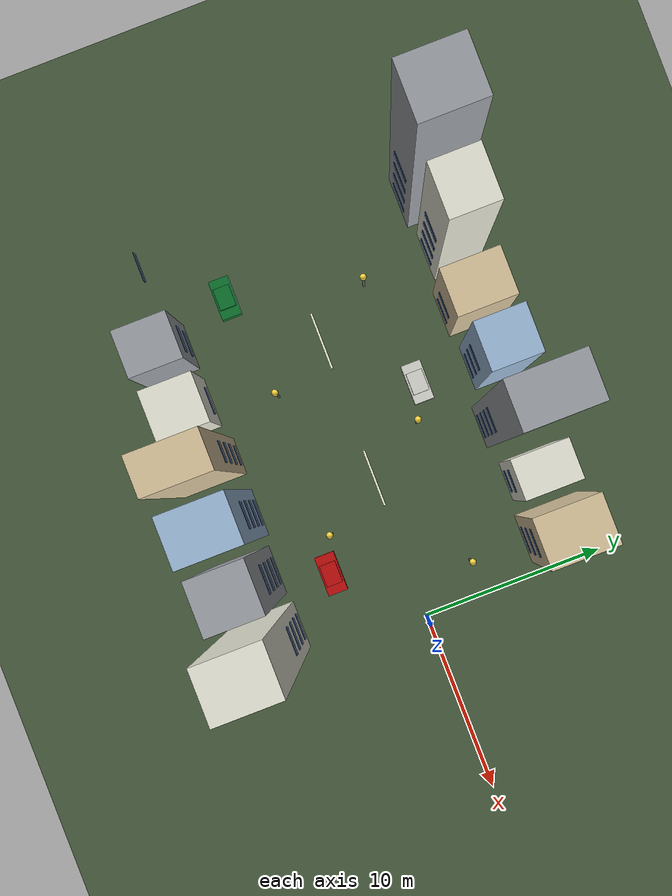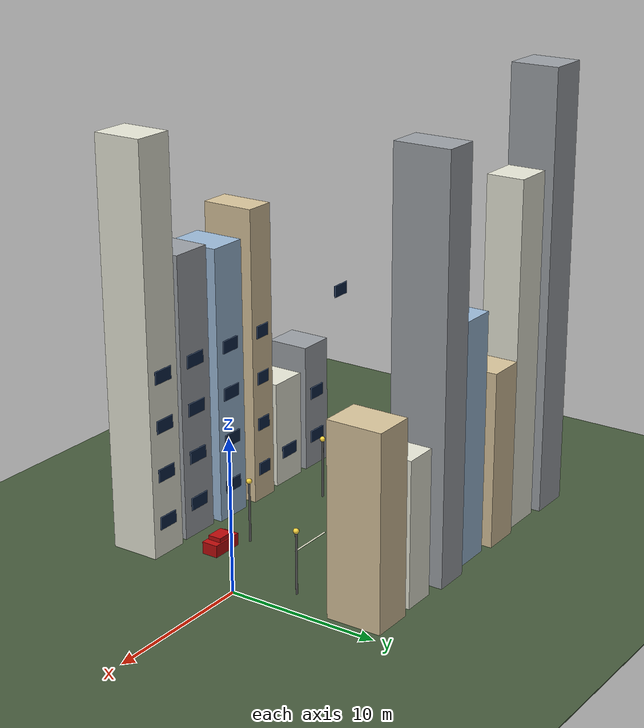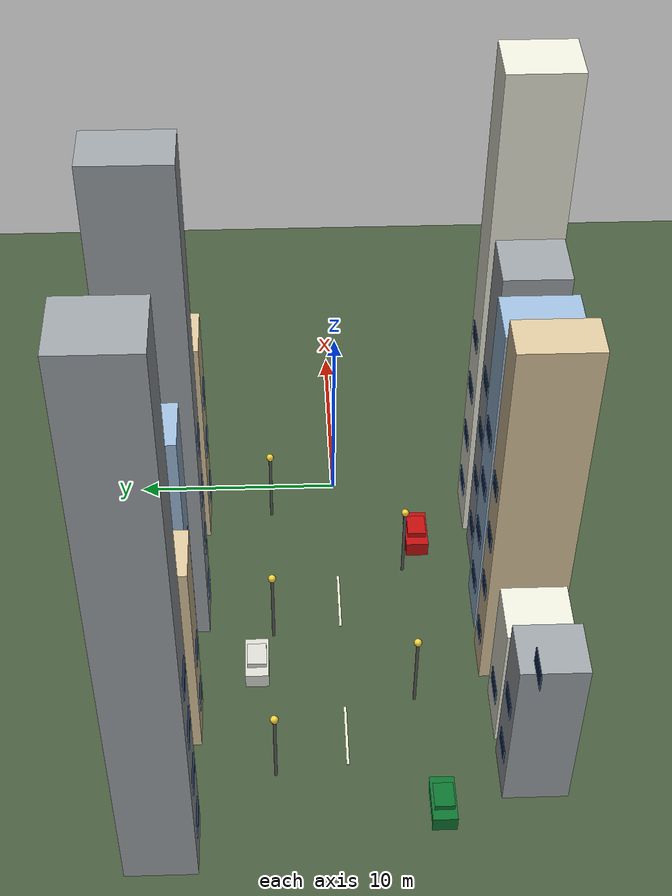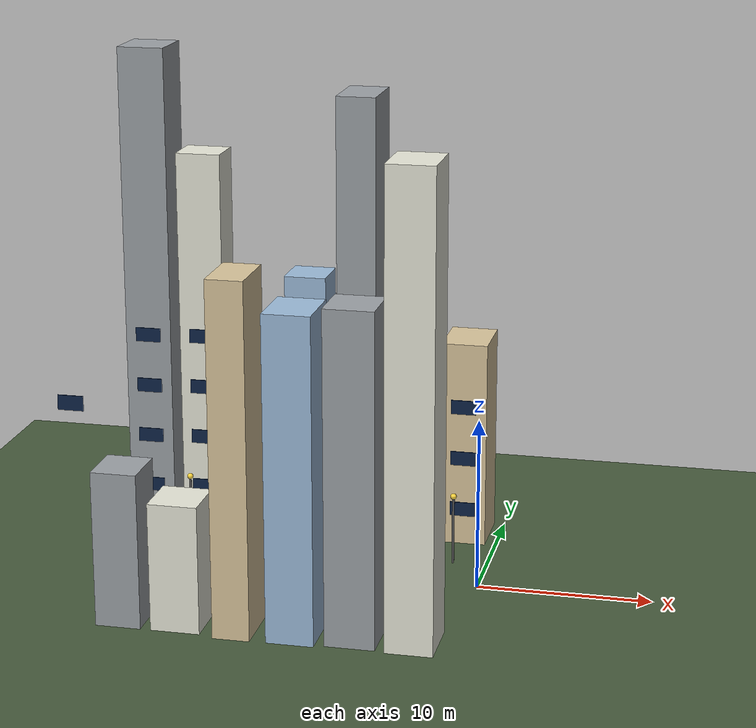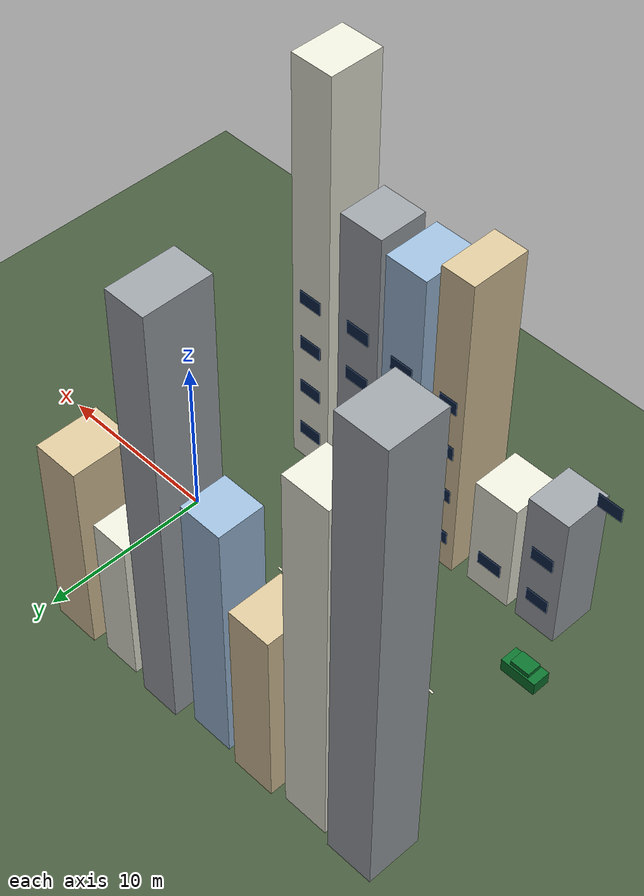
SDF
<sdf version="1.7">
 <world name="urban_street">
  <model name="green_ground">
   <static>true</static>
   <pose>0 0 -0.08 0 0 0.0</pose>
   <link name="link">
    <collision name="collision"><geometry><box><size>95 95 0.08</size></box></geometry></collision>
    <visual name="visual">
     <geometry><box><size>95 95 0.08</size></box></geometry>
     <material>
      <ambient>0.28 0.36 0.24 1</ambient>
      <diffuse>0.28 0.36 0.24 1</diffuse>
      <specular>0.1 0.1 0.1 1</specular>
     </material>
    </visual>
   </link>
  </model>
  <model name="white_lane_marking_03">
   <static>true</static>
   <pose>-16 0 0.055 0 0 0.0</pose>
   <link name="link">
    <collision name="collision"><geometry><box><size>3.2 0.12 0.02</size></box></geometry></collision>
    <visual name="visual">
     <geometry><box><size>3.2 0.12 0.02</size></box></geometry>
     <material>
      <ambient>0.95 0.95 0.85 1</ambient>
      <diffuse>0.95 0.95 0.85 1</diffuse>
      <specular>0.1 0.1 0.1 1</specular>
     </material>
    </visual>
   </link>
  </model>
  <model name="white_lane_marking_04">
   <static>true</static>
   <pose>-8 0 0.055 0 0 0.0</pose>
   <link name="link">
    <collision name="collision"><geometry><box><size>3.2 0.12 0.02</size></box></geometry></collision>
    <visual name="visual">
     <geometry><box><size>3.2 0.12 0.02</size></box></geometry>
     <material>
      <ambient>0.95 0.95 0.85 1</ambient>
      <diffuse>0.95 0.95 0.85 1</diffuse>
      <specular>0.1 0.1 0.1 1</specular>
     </material>
    </visual>
   </link>
  </model>
  <model name="building_facade_07_window_3">
   <static>true</static>
   <pose>-21.5 -6.92 11.8 0 0 0.0</pose>
   <link name="link">
    <collision name="collision"><geometry><box><size>1.46 0.05 0.85</size></box></geometry></collision>
    <visual name="visual">
     <geometry><box><size>1.46 0.05 0.85</size></box></geometry>
     <material>
      <ambient>0.05 0.14 0.28 1</ambient>
      <diffuse>0.05 0.14 0.28 1</diffuse>
      <specular>0.1 0.1 0.1 1</specular>
     </material>
    </visual>
   </link>
  </model>
  <model name="building_facade_08">
   <static>true</static>
   <pose>-18.25 -8.2 4.44 0 0 0.0</pose>
   <link name="link">
    <collision name="collision"><geometry><box><size>2.56 2.94 8.89</size></box></geometry></collision>
    <visual name="visual">
     <geometry><box><size>2.56 2.94 8.89</size></box></geometry>
     <material>
      <ambient>0.62 0.64 0.66 1</ambient>
      <diffuse>0.62 0.64 0.66 1</diffuse>
      <specular>0.1 0.1 0.1 1</specular>
     </material>
    </visual>
   </link>
  </model>
  <model name="building_facade_08_window_0">
   <static>true</static>
   <pose>-18.25 -6.7 2.2 0 0 0.0</pose>
   <link name="link">
    <collision name="collision"><geometry><box><size>1.41 0.05 0.85</size></box></geometry></collision>
    <visual name="visual">
     <geometry><box><size>1.41 0.05 0.85</size></box></geometry>
     <material>
      <ambient>0.05 0.14 0.28 1</ambient>
      <diffuse>0.05 0.14 0.28 1</diffuse>
      <specular>0.1 0.1 0.1 1</specular>
     </material>
    </visual>
   </link>
  </model>
  <model name="building_facade_08_window_1">
   <static>true</static>
   <pose>-18.25 -6.7 5.4 0 0 0.0</pose>
   <link name="link">
    <collision name="collision"><geometry><box><size>1.41 0.05 0.85</size></box></geometry></collision>
    <visual name="visual">
     <geometry><box><size>1.41 0.05 0.85</size></box></geometry>
     <material>
      <ambient>0.05 0.14 0.28 1</ambient>
      <diffuse>0.05 0.14 0.28 1</diffuse>
      <specular>0.1 0.1 0.1 1</specular>
     </material>
    </visual>
   </link>
  </model>
  <model name="building_facade_09">
   <static>true</static>
   <pose>-15.0 -8.2 3.66 0 0 0.0</pose>
   <link name="link">
    <collision name="collision"><geometry><box><size>2.77 2.94 7.32</size></box></geometry></collision>
    <visual name="visual">
     <geometry><box><size>2.77 2.94 7.32</size></box></geometry>
     <material>
      <ambient>0.92 0.92 0.86 1</ambient>
      <diffuse>0.92 0.92 0.86 1</diffuse>
      <specular>0.1 0.1 0.1 1</specular>
     </material>
    </visual>
   </link>
  </model>
  <model name="building_facade_09_window_0">
   <static>true</static>
   <pose>-15.0 -6.7 2.2 0 0 0.0</pose>
   <link name="link">
    <collision name="collision"><geometry><box><size>1.52 0.05 0.85</size></box></geometry></collision>
    <visual name="visual">
     <geometry><box><size>1.52 0.05 0.85</size></box></geometry>
     <material>
      <ambient>0.05 0.14 0.28 1</ambient>
      <diffuse>0.05 0.14 0.28 1</diffuse>
      <specular>0.1 0.1 0.1 1</specular>
     </material>
    </visual>
   </link>
  </model>
  <model name="building_facade_10">
   <static>true</static>
   <pose>-11.75 -8.2 10.05 0 0 0.0</pose>
   <link name="link">
    <collision name="collision"><geometry><box><size>2.08 3.6 20.09</size></box></geometry></collision>
    <visual name="visual">
     <geometry><box><size>2.08 3.6 20.09</size></box></geometry>
     <material>
      <ambient>0.86 0.78 0.62 1</ambient>
      <diffuse>0.86 0.78 0.62 1</diffuse>
      <specular>0.1 0.1 0.1 1</specular>
     </material>
    </visual>
   </link>
  </model>
  <model name="building_facade_10_window_0">
   <static>true</static>
   <pose>-11.75 -6.37 2.2 0 0 0.0</pose>
   <link name="link">
    <collision name="collision"><geometry><box><size>1.14 0.05 0.85</size></box></geometry></collision>
    <visual name="visual">
     <geometry><box><size>1.14 0.05 0.85</size></box></geometry>
     <material>
      <ambient>0.05 0.14 0.28 1</ambient>
      <diffuse>0.05 0.14 0.28 1</diffuse>
      <specular>0.1 0.1 0.1 1</specular>
     </material>
    </visual>
   </link>
  </model>
  <model name="building_facade_10_window_1">
   <static>true</static>
   <pose>-11.75 -6.37 5.4 0 0 0.0</pose>
   <link name="link">
    <collision name="collision"><geometry><box><size>1.14 0.05 0.85</size></box></geometry></collision>
    <visual name="visual">
     <geometry><box><size>1.14 0.05 0.85</size></box></geometry>
     <material>
      <ambient>0.05 0.14 0.28 1</ambient>
      <diffuse>0.05 0.14 0.28 1</diffuse>
      <specular>0.1 0.1 0.1 1</specular>
     </material>
    </visual>
   </link>
  </model>
  <model name="building_facade_10_window_2">
   <static>true</static>
   <pose>-11.75 -6.37 8.6 0 0 0.0</pose>
   <link name="link">
    <collision name="collision"><geometry><box><size>1.14 0.05 0.85</size></box></geometry></collision>
    <visual name="visual">
     <geometry><box><size>1.14 0.05 0.85</size></box></geometry>
     <material>
      <ambient>0.05 0.14 0.28 1</ambient>
      <diffuse>0.05 0.14 0.28 1</diffuse>
      <specular>0.1 0.1 0.1 1</specular>
     </material>
    </visual>
   </link>
  </model>
  <model name="building_facade_10_window_3">
   <static>true</static>
   <pose>-11.75 -6.37 11.8 0 0 0.0</pose>
   <link name="link">
    <collision name="collision"><geometry><box><size>1.14 0.05 0.85</size></box></geometry></collision>
    <visual name="visual">
     <geometry><box><size>1.14 0.05 0.85</size></box></geometry>
     <material>
      <ambient>0.05 0.14 0.28 1</ambient>
      <diffuse>0.05 0.14 0.28 1</diffuse>
      <specular>0.1 0.1 0.1 1</specular>
     </material>
    </visual>
   </link>
  </model>
  <model name="building_facade_11">
   <static>true</static>
   <pose>-8.5 -8.2 9.2 0 0 0.0</pose>
   <link name="link">
    <collision name="collision"><geometry><box><size>2.65 3.45 18.41</size></box></geometry></collision>
    <visual name="visual">
     <geometry><box><size>2.65 3.45 18.41</size></box></geometry>
     <material>
      <ambient>0.62 0.74 0.86 1</ambient>
      <diffuse>0.62 0.74 0.86 1</diffuse>
      <specular>0.1 0.1 0.1 1</specular>
     </material>
    </visual>
   </link>
  </model>
  <model name="building_facade_11_window_0">
   <static>true</static>
   <pose>-8.5 -6.45 2.2 0 0 0.0</pose>
   <link name="link">
    <collision name="collision"><geometry><box><size>1.46 0.05 0.85</size></box></geometry></collision>
    <visual name="visual">
     <geometry><box><size>1.46 0.05 0.85</size></box></geometry>
     <material>
      <ambient>0.05 0.14 0.28 1</ambient>
      <diffuse>0.05 0.14 0.28 1</diffuse>
      <specular>0.1 0.1 0.1 1</specular>
     </material>
    </visual>
   </link>
  </model>
  <model name="building_facade_11_window_1">
   <static>true</static>
   <pose>-8.5 -6.45 5.4 0 0 0.0</pose>
   <link name="link">
    <collision name="collision"><geometry><box><size>1.46 0.05 0.85</size></box></geometry></collision>
    <visual name="visual">
     <geometry><box><size>1.46 0.05 0.85</size></box></geometry>
     <material>
      <ambient>0.05 0.14 0.28 1</ambient>
      <diffuse>0.05 0.14 0.28 1</diffuse>
      <specular>0.1 0.1 0.1 1</specular>
     </material>
    </visual>
   </link>
  </model>
  <model name="building_facade_11_window_2">
   <static>true</static>
   <pose>-8.5 -6.45 8.6 0 0 0.0</pose>
   <link name="link">
    <collision name="collision"><geometry><box><size>1.46 0.05 0.85</size></box></geometry></collision>
    <visual name="visual">
     <geometry><box><size>1.46 0.05 0.85</size></box></geometry>
     <material>
      <ambient>0.05 0.14 0.28 1</ambient>
      <diffuse>0.05 0.14 0.28 1</diffuse>
      <specular>0.1 0.1 0.1 1</specular>
     </material>
    </visual>
   </link>
  </model>
  <model name="building_facade_11_window_3">
   <static>true</static>
   <pose>-8.5 -6.45 11.8 0 0 0.0</pose>
   <link name="link">
    <collision name="collision"><geometry><box><size>1.46 0.05 0.85</size></box></geometry></collision>
    <visual name="visual">
     <geometry><box><size>1.46 0.05 0.85</size></box></geometry>
     <material>
      <ambient>0.05 0.14 0.28 1</ambient>
      <diffuse>0.05 0.14 0.28 1</diffuse>
      <specular>0.1 0.1 0.1 1</specular>
     </material>
    </visual>
   </link>
  </model>
  <model name="building_facade_12">
   <static>true</static>
   <pose>-5.25 -8.2 9.4 0 0 0.0</pose>
   <link name="link">
    <collision name="collision"><geometry><box><size>2.78 2.99 18.8</size></box></geometry></collision>
    <visual name="visual">
     <geometry><box><size>2.78 2.99 18.8</size></box></geometry>
     <material>
      <ambient>0.62 0.64 0.66 1</ambient>
      <diffuse>0.62 0.64 0.66 1</diffuse>
      <specular>0.1 0.1 0.1 1</specular>
     </material>
    </visual>
   </link>
  </model>
  <model name="building_facade_12_window_0">
   <static>true</static>
   <pose>-5.25 -6.67 2.2 0 0 0.0</pose>
   <link name="link">
    <collision name="collision"><geometry><box><size>1.53 0.05 0.85</size></box></geometry></collision>
    <visual name="visual">
     <geometry><box><size>1.53 0.05 0.85</size></box></geometry>
     <material>
      <ambient>0.05 0.14 0.28 1</ambient>
      <diffuse>0.05 0.14 0.28 1</diffuse>
      <specular>0.1 0.1 0.1 1</specular>
     </material>
    </visual>
   </link>
  </model>
  <model name="building_facade_12_window_1">
   <static>true</static>
   <pose>-5.25 -6.67 5.4 0 0 0.0</pose>
   <link name="link">
    <collision name="collision"><geometry><box><size>1.53 0.05 0.85</size></box></geometry></collision>
    <visual name="visual">
     <geometry><box><size>1.53 0.05 0.85</size></box></geometry>
     <material>
      <ambient>0.05 0.14 0.28 1</ambient>
      <diffuse>0.05 0.14 0.28 1</diffuse>
      <specular>0.1 0.1 0.1 1</specular>
     </material>
    </visual>
   </link>
  </model>
  <model name="building_facade_12_window_2">
   <static>true</static>
   <pose>-5.25 -6.67 8.6 0 0 0.0</pose>
   <link name="link">
    <collision name="collision"><geometry><box><size>1.53 0.05 0.85</size></box></geometry></collision>
    <visual name="visual">
     <geometry><box><size>1.53 0.05 0.85</size></box></geometry>
     <material>
      <ambient>0.05 0.14 0.28 1</ambient>
      <diffuse>0.05 0.14 0.28 1</diffuse>
      <specular>0.1 0.1 0.1 1</specular>
     </material>
    </visual>
   </link>
  </model>
  <model name="building_facade_12_window_3">
   <static>true</static>
   <pose>-5.25 -6.67 11.8 0 0 0.0</pose>
   <link name="link">
    <collision name="collision"><geometry><box><size>1.53 0.05 0.85</size></box></geometry></collision>
    <visual name="visual">
     <geometry><box><size>1.53 0.05 0.85</size></box></geometry>
     <material>
      <ambient>0.05 0.14 0.28 1</ambient>
      <diffuse>0.05 0.14 0.28 1</diffuse>
      <specular>0.1 0.1 0.1 1</specular>
     </material>
    </visual>
   </link>
  </model>
  <model name="building_facade_13">
   <static>true</static>
   <pose>-2.0 -8.2 13.27 0 0 0.0</pose>
   <link name="link">
    <collision name="collision"><geometry><box><size>2.66 3.3 26.54</size></box></geometry></collision>
    <visual name="visual">
     <geometry><box><size>2.66 3.3 26.54</size></box></geometry>
     <material>
      <ambient>0.92 0.92 0.86 1</ambient>
      <diffuse>0.92 0.92 0.86 1</diffuse>
      <specular>0.1 0.1 0.1 1</specular>
     </material>
    </visual>
   </link>
  </model>
  <model name="building_facade_13_window_0">
   <static>true</static>
   <pose>-2.0 -6.52 2.2 0 0 0.0</pose>
   <link name="link">
    <collision name="collision"><geometry><box><size>1.46 0.05 0.85</size></box></geometry></collision>
    <visual name="visual">
     <geometry><box><size>1.46 0.05 0.85</size></box></geometry>
     <material>
      <ambient>0.05 0.14 0.28 1</ambient>
      <diffuse>0.05 0.14 0.28 1</diffuse>
      <specular>0.1 0.1 0.1 1</specular>
     </material>
    </visual>
   </link>
  </model>
  <model name="building_facade_13_window_1">
   <static>true</static>
   <pose>-2.0 -6.52 5.4 0 0 0.0</pose>
   <link name="link">
    <collision name="collision"><geometry><box><size>1.46 0.05 0.85</size></box></geometry></collision>
    <visual name="visual">
     <geometry><box><size>1.46 0.05 0.85</size></box></geometry>
     <material>
      <ambient>0.05 0.14 0.28 1</ambient>
      <diffuse>0.05 0.14 0.28 1</diffuse>
      <specular>0.1 0.1 0.1 1</specular>
     </material>
    </visual>
   </link>
  </model>
  <model name="building_facade_13_window_2">
   <static>true</static>
   <pose>-2.0 -6.52 8.6 0 0 0.0</pose>
   <link name="link">
    <collision name="collision"><geometry><box><size>1.46 0.05 0.85</size></box></geometry></collision>
    <visual name="visual">
     <geometry><box><size>1.46 0.05 0.85</size></box></geometry>
     <material>
      <ambient>0.05 0.14 0.28 1</ambient>
      <diffuse>0.05 0.14 0.28 1</diffuse>
      <specular>0.1 0.1 0.1 1</specular>
     </material>
    </visual>
   </link>
  </model>
  <model name="building_facade_13_window_3">
   <static>true</static>
   <pose>-2.0 -6.52 11.8 0 0 0.0</pose>
   <link name="link">
    <collision name="collision"><geometry><box><size>1.46 0.05 0.85</size></box></geometry></collision>
    <visual name="visual">
     <geometry><box><size>1.46 0.05 0.85</size></box></geometry>
     <material>
      <ambient>0.05 0.14 0.28 1</ambient>
      <diffuse>0.05 0.14 0.28 1</diffuse>
      <specular>0.1 0.1 0.1 1</specular>
     </material>
    </visual>
   </link>
  </model>
  <model name="building_facade_33">
   <static>true</static>
   <pose>-21.5 8.2 14.64 0 0 0.0</pose>
   <link name="link">
    <collision name="collision"><geometry><box><size>2.8 3.19 29.28</size></box></geometry></collision>
    <visual name="visual">
     <geometry><box><size>2.8 3.19 29.28</size></box></geometry>
     <material>
      <ambient>0.62 0.64 0.66 1</ambient>
      <diffuse>0.62 0.64 0.66 1</diffuse>
      <specular>0.1 0.1 0.1 1</specular>
     </material>
    </visual>
   </link>
  </model>
  <model name="building_facade_33_window_0">
   <static>true</static>
   <pose>-21.5 6.58 2.2 0 0 0.0</pose>
   <link name="link">
    <collision name="collision"><geometry><box><size>1.54 0.05 0.85</size></box></geometry></collision>
    <visual name="visual">
     <geometry><box><size>1.54 0.05 0.85</size></box></geometry>
     <material>
      <ambient>0.05 0.14 0.28 1</ambient>
      <diffuse>0.05 0.14 0.28 1</diffuse>
      <specular>0.1 0.1 0.1 1</specular>
     </material>
    </visual>
   </link>
  </model>
  <model name="building_facade_33_window_1">
   <static>true</static>
   <pose>-21.5 6.58 5.4 0 0 0.0</pose>
   <link name="link">
    <collision name="collision"><geometry><box><size>1.54 0.05 0.85</size></box></geometry></collision>
    <visual name="visual">
     <geometry><box><size>1.54 0.05 0.85</size></box></geometry>
     <material>
      <ambient>0.05 0.14 0.28 1</ambient>
      <diffuse>0.05 0.14 0.28 1</diffuse>
      <specular>0.1 0.1 0.1 1</specular>
     </material>
    </visual>
   </link>
  </model>
  <model name="building_facade_33_window_2">
   <static>true</static>
   <pose>-21.5 6.58 8.6 0 0 0.0</pose>
   <link name="link">
    <collision name="collision"><geometry><box><size>1.54 0.05 0.85</size></box></geometry></collision>
    <visual name="visual">
     <geometry><box><size>1.54 0.05 0.85</size></box></geometry>
     <material>
      <ambient>0.05 0.14 0.28 1</ambient>
      <diffuse>0.05 0.14 0.28 1</diffuse>
      <specular>0.1 0.1 0.1 1</specular>
     </material>
    </visual>
   </link>
  </model>
  <model name="building_facade_33_window_3">
   <static>true</static>
   <pose>-21.5 6.58 11.8 0 0 0.0</pose>
   <link name="link">
    <collision name="collision"><geometry><box><size>1.54 0.05 0.85</size></box></geometry></collision>
    <visual name="visual">
     <geometry><box><size>1.54 0.05 0.85</size></box></geometry>
     <material>
      <ambient>0.05 0.14 0.28 1</ambient>
      <diffuse>0.05 0.14 0.28 1</diffuse>
      <specular>0.1 0.1 0.1 1</specular>
     </material>
    </visual>
   </link>
  </model>
  <model name="building_facade_34">
   <static>true</static>
   <pose>-18.25 8.2 11.51 0 0 0.0</pose>
   <link name="link">
    <collision name="collision"><geometry><box><size>2.69 2.51 23.02</size></box></geometry></collision>
    <visual name="visual">
     <geometry><box><size>2.69 2.51 23.02</size></box></geometry>
     <material>
      <ambient>0.92 0.92 0.86 1</ambient>
      <diffuse>0.92 0.92 0.86 1</diffuse>
      <specular>0.1 0.1 0.1 1</specular>
     </material>
    </visual>
   </link>
  </model>
  <model name="building_facade_34_window_0">
   <static>true</static>
   <pose>-18.25 6.91 2.2 0 0 0.0</pose>
   <link name="link">
    <collision name="collision"><geometry><box><size>1.48 0.05 0.85</size></box></geometry></collision>
    <visual name="visual">
     <geometry><box><size>1.48 0.05 0.85</size></box></geometry>
     <material>
      <ambient>0.05 0.14 0.28 1</ambient>
      <diffuse>0.05 0.14 0.28 1</diffuse>
      <specular>0.1 0.1 0.1 1</specular>
     </material>
    </visual>
   </link>
  </model>
  <model name="building_facade_34_window_1">
   <static>true</static>
   <pose>-18.25 6.91 5.4 0 0 0.0</pose>
   <link name="link">
    <collision name="collision"><geometry><box><size>1.48 0.05 0.85</size></box></geometry></collision>
    <visual name="visual">
     <geometry><box><size>1.48 0.05 0.85</size></box></geometry>
     <material>
      <ambient>0.05 0.14 0.28 1</ambient>
      <diffuse>0.05 0.14 0.28 1</diffuse>
      <specular>0.1 0.1 0.1 1</specular>
     </material>
    </visual>
   </link>
  </model>
  <model name="building_facade_34_window_2">
   <static>true</static>
   <pose>-18.25 6.91 8.6 0 0 0.0</pose>
   <link name="link">
    <collision name="collision"><geometry><box><size>1.48 0.05 0.85</size></box></geometry></collision>
    <visual name="visual">
     <geometry><box><size>1.48 0.05 0.85</size></box></geometry>
     <material>
      <ambient>0.05 0.14 0.28 1</ambient>
      <diffuse>0.05 0.14 0.28 1</diffuse>
      <specular>0.1 0.1 0.1 1</specular>
     </material>
    </visual>
   </link>
  </model>
  <model name="building_facade_34_window_3">
   <static>true</static>
   <pose>-18.25 6.91 11.8 0 0 0.0</pose>
   <link name="link">
    <collision name="collision"><geometry><box><size>1.48 0.05 0.85</size></box></geometry></collision>
    <visual name="visual">
     <geometry><box><size>1.48 0.05 0.85</size></box></geometry>
     <material>
      <ambient>0.05 0.14 0.28 1</ambient>
      <diffuse>0.05 0.14 0.28 1</diffuse>
      <specular>0.1 0.1 0.1 1</specular>
     </material>
    </visual>
   </link>
  </model>
  <model name="building_facade_35">
   <static>true</static>
   <pose>-15.0 8.2 5.84 0 0 0.0</pose>
   <link name="link">
    <collision name="collision"><geometry><box><size>2.55 3.2 11.67</size></box></geometry></collision>
    <visual name="visual">
     <geometry><box><size>2.55 3.2 11.67</size></box></geometry>
     <material>
      <ambient>0.86 0.78 0.62 1</ambient>
      <diffuse>0.86 0.78 0.62 1</diffuse>
      <specular>0.1 0.1 0.1 1</specular>
     </material>
    </visual>
   </link>
  </model>
  <model name="building_facade_35_window_0">
   <static>true</static>
   <pose>-15.0 6.57 2.2 0 0 0.0</pose>
   <link name="link">
    <collision name="collision"><geometry><box><size>1.4 0.05 0.85</size></box></geometry></collision>
    <visual name="visual">
     <geometry><box><size>1.4 0.05 0.85</size></box></geometry>
     <material>
      <ambient>0.05 0.14 0.28 1</ambient>
      <diffuse>0.05 0.14 0.28 1</diffuse>
      <specular>0.1 0.1 0.1 1</specular>
     </material>
    </visual>
   </link>
  </model>
  <model name="building_facade_35_window_1">
   <static>true</static>
   <pose>-15.0 6.57 5.4 0 0 0.0</pose>
   <link name="link">
    <collision name="collision"><geometry><box><size>1.4 0.05 0.85</size></box></geometry></collision>
    <visual name="visual">
     <geometry><box><size>1.4 0.05 0.85</size></box></geometry>
     <material>
      <ambient>0.05 0.14 0.28 1</ambient>
      <diffuse>0.05 0.14 0.28 1</diffuse>
      <specular>0.1 0.1 0.1 1</specular>
     </material>
    </visual>
   </link>
  </model>
  <model name="building_facade_36">
   <static>true</static>
   <pose>-11.75 8.2 7.93 0 0 0.0</pose>
   <link name="link">
    <collision name="collision"><geometry><box><size>2.51 2.65 15.87</size></box></geometry></collision>
    <visual name="visual">
     <geometry><box><size>2.51 2.65 15.87</size></box></geometry>
     <material>
      <ambient>0.62 0.74 0.86 1</ambient>
      <diffuse>0.62 0.74 0.86 1</diffuse>
      <specular>0.1 0.1 0.1 1</specular>
     </material>
    </visual>
   </link>
  </model>
  <model name="building_facade_36_window_0">
   <static>true</static>
   <pose>-11.75 6.85 2.2 0 0 0.0</pose>
   <link name="link">
    <collision name="collision"><geometry><box><size>1.38 0.05 0.85</size></box></geometry></collision>
    <visual name="visual">
     <geometry><box><size>1.38 0.05 0.85</size></box></geometry>
     <material>
      <ambient>0.05 0.14 0.28 1</ambient>
      <diffuse>0.05 0.14 0.28 1</diffuse>
      <specular>0.1 0.1 0.1 1</specular>
     </material>
    </visual>
   </link>
  </model>
  <model name="building_facade_36_window_1">
   <static>true</static>
   <pose>-11.75 6.85 5.4 0 0 0.0</pose>
   <link name="link">
    <collision name="collision"><geometry><box><size>1.38 0.05 0.85</size></box></geometry></collision>
    <visual name="visual">
     <geometry><box><size>1.38 0.05 0.85</size></box></geometry>
     <material>
      <ambient>0.05 0.14 0.28 1</ambient>
      <diffuse>0.05 0.14 0.28 1</diffuse>
      <specular>0.1 0.1 0.1 1</specular>
     </material>
    </visual>
   </link>
  </model>
  <model name="building_facade_36_window_2">
   <static>true</static>
   <pose>-11.75 6.85 8.6 0 0 0.0</pose>
   <link name="link">
    <collision name="collision"><geometry><box><size>1.38 0.05 0.85</size></box></geometry></collision>
    <visual name="visual">
     <geometry><box><size>1.38 0.05 0.85</size></box></geometry>
     <material>
      <ambient>0.05 0.14 0.28 1</ambient>
      <diffuse>0.05 0.14 0.28 1</diffuse>
      <specular>0.1 0.1 0.1 1</specular>
     </material>
    </visual>
   </link>
  </model>
  <model name="building_facade_37">
   <static>true</static>
   <pose>-8.5 8.2 13.45 0 0 0.0</pose>
   <link name="link">
    <collision name="collision"><geometry><box><size>2.36 3.74 26.9</size></box></geometry></collision>
    <visual name="visual">
     <geometry><box><size>2.36 3.74 26.9</size></box></geometry>
     <material>
      <ambient>0.62 0.64 0.66 1</ambient>
      <diffuse>0.62 0.64 0.66 1</diffuse>
      <specular>0.1 0.1 0.1 1</specular>
     </material>
    </visual>
   </link>
  </model>
  <model name="building_facade_37_window_0">
   <static>true</static>
   <pose>-8.5 6.3 2.2 0 0 0.0</pose>
   <link name="link">
    <collision name="collision"><geometry><box><size>1.3 0.05 0.85</size></box></geometry></collision>
    <visual name="visual">
     <geometry><box><size>1.3 0.05 0.85</size></box></geometry>
     <material>
      <ambient>0.05 0.14 0.28 1</ambient>
      <diffuse>0.05 0.14 0.28 1</diffuse>
      <specular>0.1 0.1 0.1 1</specular>
     </material>
    </visual>
   </link>
  </model>
  <model name="building_facade_37_window_1">
   <static>true</static>
   <pose>-8.5 6.3 5.4 0 0 0.0</pose>
   <link name="link">
    <collision name="collision"><geometry><box><size>1.3 0.05 0.85</size></box></geometry></collision>
    <visual name="visual">
     <geometry><box><size>1.3 0.05 0.85</size></box></geometry>
     <material>
      <ambient>0.05 0.14 0.28 1</ambient>
      <diffuse>0.05 0.14 0.28 1</diffuse>
      <specular>0.1 0.1 0.1 1</specular>
     </material>
    </visual>
   </link>
  </model>
  <model name="building_facade_37_window_2">
   <static>true</static>
   <pose>-8.5 6.3 8.6 0 0 0.0</pose>
   <link name="link">
    <collision name="collision"><geometry><box><size>1.3 0.05 0.85</size></box></geometry></collision>
    <visual name="visual">
     <geometry><box><size>1.3 0.05 0.85</size></box></geometry>
     <material>
      <ambient>0.05 0.14 0.28 1</ambient>
      <diffuse>0.05 0.14 0.28 1</diffuse>
      <specular>0.1 0.1 0.1 1</specular>
     </material>
    </visual>
   </link>
  </model>
  <model name="building_facade_37_window_3">
   <static>true</static>
   <pose>-8.5 6.3 11.8 0 0 0.0</pose>
   <link name="link">
    <collision name="collision"><geometry><box><size>1.3 0.05 0.85</size></box></geometry></collision>
    <visual name="visual">
     <geometry><box><size>1.3 0.05 0.85</size></box></geometry>
     <material>
      <ambient>0.05 0.14 0.28 1</ambient>
      <diffuse>0.05 0.14 0.28 1</diffuse>
      <specular>0.1 0.1 0.1 1</specular>
     </material>
    </visual>
   </link>
  </model>
  <model name="building_facade_38">
   <static>true</static>
   <pose>-5.25 8.2 4.73 0 0 0.0</pose>
   <link name="link">
    <collision name="collision"><geometry><box><size>2.21 3.15 9.47</size></box></geometry></collision>
    <visual name="visual">
     <geometry><box><size>2.21 3.15 9.47</size></box></geometry>
     <material>
      <ambient>0.92 0.92 0.86 1</ambient>
      <diffuse>0.92 0.92 0.86 1</diffuse>
      <specular>0.1 0.1 0.1 1</specular>
     </material>
    </visual>
   </link>
  </model>
  <model name="building_facade_38_window_0">
   <static>true</static>
   <pose>-5.25 6.59 2.2 0 0 0.0</pose>
   <link name="link">
    <collision name="collision"><geometry><box><size>1.22 0.05 0.85</size></box></geometry></collision>
    <visual name="visual">
     <geometry><box><size>1.22 0.05 0.85</size></box></geometry>
     <material>
      <ambient>0.05 0.14 0.28 1</ambient>
      <diffuse>0.05 0.14 0.28 1</diffuse>
      <specular>0.1 0.1 0.1 1</specular>
     </material>
    </visual>
   </link>
  </model>
  <model name="building_facade_38_window_1">
   <static>true</static>
   <pose>-5.25 6.59 5.4 0 0 0.0</pose>
   <link name="link">
    <collision name="collision"><geometry><box><size>1.22 0.05 0.85</size></box></geometry></collision>
    <visual name="visual">
     <geometry><box><size>1.22 0.05 0.85</size></box></geometry>
     <material>
      <ambient>0.05 0.14 0.28 1</ambient>
      <diffuse>0.05 0.14 0.28 1</diffuse>
      <specular>0.1 0.1 0.1 1</specular>
     </material>
    </visual>
   </link>
  </model>
  <model name="building_facade_39">
   <static>true</static>
   <pose>-2.0 8.2 6.23 0 0 0.0</pose>
   <link name="link">
    <collision name="collision"><geometry><box><size>2.73 3.63 12.46</size></box></geometry></collision>
    <visual name="visual">
     <geometry><box><size>2.73 3.63 12.46</size></box></geometry>
     <material>
      <ambient>0.86 0.78 0.62 1</ambient>
      <diffuse>0.86 0.78 0.62 1</diffuse>
      <specular>0.1 0.1 0.1 1</specular>
     </material>
    </visual>
   </link>
  </model>
  <model name="building_facade_39_window_0">
   <static>true</static>
   <pose>-2.0 6.35 2.2 0 0 0.0</pose>
   <link name="link">
    <collision name="collision"><geometry><box><size>1.5 0.05 0.85</size></box></geometry></collision>
    <visual name="visual">
     <geometry><box><size>1.5 0.05 0.85</size></box></geometry>
     <material>
      <ambient>0.05 0.14 0.28 1</ambient>
      <diffuse>0.05 0.14 0.28 1</diffuse>
      <specular>0.1 0.1 0.1 1</specular>
     </material>
    </visual>
   </link>
  </model>
  <model name="building_facade_39_window_1">
   <static>true</static>
   <pose>-2.0 6.35 5.4 0 0 0.0</pose>
   <link name="link">
    <collision name="collision"><geometry><box><size>1.5 0.05 0.85</size></box></geometry></collision>
    <visual name="visual">
     <geometry><box><size>1.5 0.05 0.85</size></box></geometry>
     <material>
      <ambient>0.05 0.14 0.28 1</ambient>
      <diffuse>0.05 0.14 0.28 1</diffuse>
      <specular>0.1 0.1 0.1 1</specular>
     </material>
    </visual>
   </link>
  </model>
  <model name="building_facade_39_window_2">
   <static>true</static>
   <pose>-2.0 6.35 8.6 0 0 0.0</pose>
   <link name="link">
    <collision name="collision"><geometry><box><size>1.5 0.05 0.85</size></box></geometry></collision>
    <visual name="visual">
     <geometry><box><size>1.5 0.05 0.85</size></box></geometry>
     <material>
      <ambient>0.05 0.14 0.28 1</ambient>
      <diffuse>0.05 0.14 0.28 1</diffuse>
      <specular>0.1 0.1 0.1 1</specular>
     </material>
    </visual>
   </link>
  </model>
  <model name="street_pole_05">
   <static>true</static>
   <pose>-18.0 3.25 2.0 0 0 0</pose>
   <link name="link">
    <collision name="collision">
     <geometry><cylinder><radius>0.07</radius><length>4.0</length></cylinder></geometry>
    </collision>
    <visual name="visual">
     <geometry><cylinder><radius>0.07</radius><length>4.0</length></cylinder></geometry>
     <material>
      <ambient>0.35 0.35 0.35 1</ambient>
      <diffuse>0.35 0.35 0.35 1</diffuse>
      <specular>0.1 0.1 0.1 1</specular>
     </material>
    </visual>
   </link>
  </model>
  <model name="lamp_head_05">
   <static>true</static>
   <pose>-18.0 3.25 4.15 0 0 0</pose>
   <link name="link">
    <visual name="visual">
     <geometry><sphere><radius>0.18</radius></sphere></geometry>
     <material>
      <ambient>1.0 0.85 0.25 1</ambient>
      <diffuse>1.0 0.85 0.25 1</diffuse>
      <specular>0.1 0.1 0.1 1</specular>
     </material>
    </visual>
   </link>
  </model>
  <model name="street_pole_06">
   <static>true</static>
   <pose>-14.0 -3.25 2.0 0 0 0</pose>
   <link name="link">
    <collision name="collision">
     <geometry><cylinder><radius>0.07</radius><length>4.0</length></cylinder></geometry>
    </collision>
    <visual name="visual">
     <geometry><cylinder><radius>0.07</radius><length>4.0</length></cylinder></geometry>
     <material>
      <ambient>0.35 0.35 0.35 1</ambient>
      <diffuse>0.35 0.35 0.35 1</diffuse>
      <specular>0.1 0.1 0.1 1</specular>
     </material>
    </visual>
   </link>
  </model>
  <model name="lamp_head_06">
   <static>true</static>
   <pose>-14.0 -3.25 4.15 0 0 0</pose>
   <link name="link">
    <visual name="visual">
     <geometry><sphere><radius>0.18</radius></sphere></geometry>
     <material>
      <ambient>1.0 0.85 0.25 1</ambient>
      <diffuse>1.0 0.85 0.25 1</diffuse>
      <specular>0.1 0.1 0.1 1</specular>
     </material>
    </visual>
   </link>
  </model>
  <model name="street_pole_07">
   <static>true</static>
   <pose>-10.0 3.25 2.0 0 0 0</pose>
   <link name="link">
    <collision name="collision">
     <geometry><cylinder><radius>0.07</radius><length>4.0</length></cylinder></geometry>
    </collision>
    <visual name="visual">
     <geometry><cylinder><radius>0.07</radius><length>4.0</length></cylinder></geometry>
     <material>
      <ambient>0.35 0.35 0.35 1</ambient>
      <diffuse>0.35 0.35 0.35 1</diffuse>
      <specular>0.1 0.1 0.1 1</specular>
     </material>
    </visual>
   </link>
  </model>
  <model name="lamp_head_07">
   <static>true</static>
   <pose>-10.0 3.25 4.15 0 0 0</pose>
   <link name="link">
    <visual name="visual">
     <geometry><sphere><radius>0.18</radius></sphere></geometry>
     <material>
      <ambient>1.0 0.85 0.25 1</ambient>
      <diffuse>1.0 0.85 0.25 1</diffuse>
      <specular>0.1 0.1 0.1 1</specular>
     </material>
    </visual>
   </link>
  </model>
  <model name="street_pole_08">
   <static>true</static>
   <pose>-6.0 -3.25 2.0 0 0 0</pose>
   <link name="link">
    <collision name="collision">
     <geometry><cylinder><radius>0.07</radius><length>4.0</length></cylinder></geometry>
    </collision>
    <visual name="visual">
     <geometry><cylinder><radius>0.07</radius><length>4.0</length></cylinder></geometry>
     <material>
      <ambient>0.35 0.35 0.35 1</ambient>
      <diffuse>0.35 0.35 0.35 1</diffuse>
      <specular>0.1 0.1 0.1 1</specular>
     </material>
    </visual>
   </link>
  </model>
  <model name="lamp_head_08">
   <static>true</static>
   <pose>-6.0 -3.25 4.15 0 0 0</pose>
   <link name="link">
    <visual name="visual">
     <geometry><sphere><radius>0.18</radius></sphere></geometry>
     <material>
      <ambient>1.0 0.85 0.25 1</ambient>
      <diffuse>1.0 0.85 0.25 1</diffuse>
      <specular>0.1 0.1 0.1 1</specular>
     </material>
    </visual>
   </link>
  </model>
  <model name="street_pole_09">
   <static>true</static>
   <pose>-2.0 3.25 2.0 0 0 0</pose>
   <link name="link">
    <collision name="collision">
     <geometry><cylinder><radius>0.07</radius><length>4.0</length></cylinder></geometry>
    </collision>
    <visual name="visual">
     <geometry><cylinder><radius>0.07</radius><length>4.0</length></cylinder></geometry>
     <material>
      <ambient>0.35 0.35 0.35 1</ambient>
      <diffuse>0.35 0.35 0.35 1</diffuse>
      <specular>0.1 0.1 0.1 1</specular>
     </material>
    </visual>
   </link>
  </model>
  <model name="lamp_head_09">
   <static>true</static>
   <pose>-2.0 3.25 4.15 0 0 0</pose>
   <link name="link">
    <visual name="visual">
     <geometry><sphere><radius>0.18</radius></sphere></geometry>
     <material>
      <ambient>1.0 0.85 0.25 1</ambient>
      <diffuse>1.0 0.85 0.25 1</diffuse>
      <specular>0.1 0.1 0.1 1</specular>
     </material>
    </visual>
   </link>
  </model>
  <model name="parked_vehicle_body_02">
   <static>true</static>
   <pose>-20 -4.05 0.45 0 0 0.0</pose>
   <link name="link">
    <collision name="collision"><geometry><box><size>2.2 1.1 0.8</size></box></geometry></collision>
    <visual name="visual">
     <geometry><box><size>2.2 1.1 0.8</size></box></geometry>
     <material>
      <ambient>0.05 0.45 0.18 1</ambient>
      <diffuse>0.05 0.45 0.18 1</diffuse>
      <specular>0.1 0.1 0.1 1</specular>
     </material>
    </visual>
   </link>
  </model>
  <model name="parked_vehicle_roof_02">
   <static>true</static>
   <pose>-20 -4.05 0.95 0 0 0.0</pose>
   <link name="link">
    <collision name="collision"><geometry><box><size>1.2 0.9 0.35</size></box></geometry></collision>
    <visual name="visual">
     <geometry><box><size>1.2 0.9 0.35</size></box></geometry>
     <material>
      <ambient>0.05 0.45 0.18 1</ambient>
      <diffuse>0.05 0.45 0.18 1</diffuse>
      <specular>0.1 0.1 0.1 1</specular>
     </material>
    </visual>
   </link>
  </model>
  <model name="parked_vehicle_body_03">
   <static>true</static>
   <pose>-12 4.05 0.45 0 0 0.0</pose>
   <link name="link">
    <collision name="collision"><geometry><box><size>2.2 1.1 0.8</size></box></geometry></collision>
    <visual name="visual">
     <geometry><box><size>2.2 1.1 0.8</size></box></geometry>
     <material>
      <ambient>0.85 0.85 0.82 1</ambient>
      <diffuse>0.85 0.85 0.82 1</diffuse>
      <specular>0.1 0.1 0.1 1</specular>
     </material>
    </visual>
   </link>
  </model>
  <model name="parked_vehicle_roof_03">
   <static>true</static>
   <pose>-12 4.05 0.95 0 0 0.0</pose>
   <link name="link">
    <collision name="collision"><geometry><box><size>1.2 0.9 0.35</size></box></geometry></collision>
    <visual name="visual">
     <geometry><box><size>1.2 0.9 0.35</size></box></geometry>
     <material>
      <ambient>0.85 0.85 0.82 1</ambient>
      <diffuse>0.85 0.85 0.82 1</diffuse>
      <specular>0.1 0.1 0.1 1</specular>
     </material>
    </visual>
   </link>
  </model>
  <model name="parked_vehicle_body_04">
   <static>true</static>
   <pose>-4 -4.05 0.45 0 0 0.0</pose>
   <link name="link">
    <collision name="collision"><geometry><box><size>2.2 1.1 0.8</size></box></geometry></collision>
    <visual name="visual">
     <geometry><box><size>2.2 1.1 0.8</size></box></geometry>
     <material>
      <ambient>0.75 0.05 0.05 1</ambient>
      <diffuse>0.75 0.05 0.05 1</diffuse>
      <specular>0.1 0.1 0.1 1</specular>
     </material>
    </visual>
   </link>
  </model>
  <model name="parked_vehicle_roof_04">
   <static>true</static>
   <pose>-4 -4.05 0.95 0 0 0.0</pose>
   <link name="link">
    <collision name="collision"><geometry><box><size>1.2 0.9 0.35</size></box></geometry></collision>
    <visual name="visual">
     <geometry><box><size>1.2 0.9 0.35</size></box></geometry>
     <material>
      <ambient>0.75 0.05 0.05 1</ambient>
      <diffuse>0.75 0.05 0.05 1</diffuse>
      <specular>0.1 0.1 0.1 1</specular>
     </material>
    </visual>
   </link>
  </model>
 </world>
</sdf>
